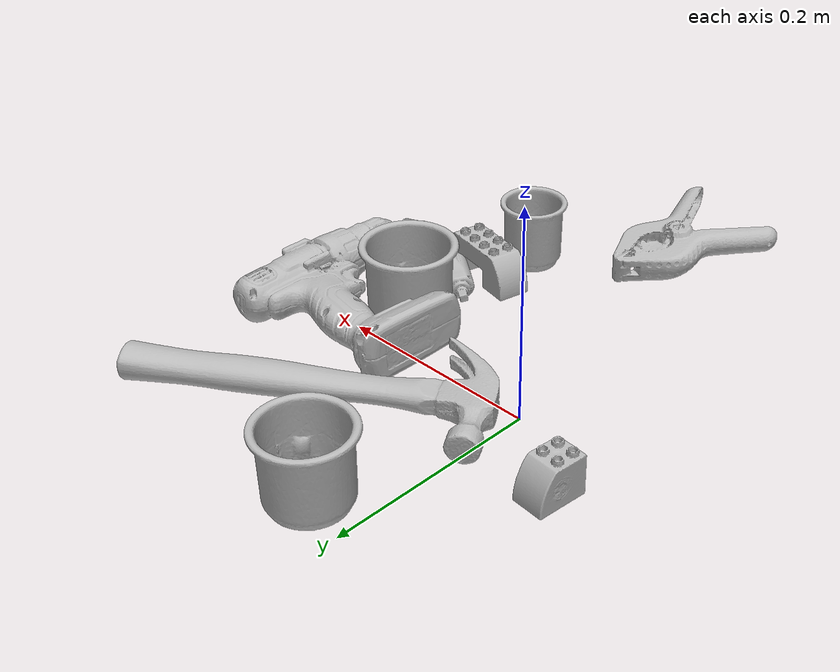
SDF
<sdf version="1.4">
  <world name="default">
    <light name="light1" type="point">
      <pose>0 0 1 0 0 0</pose>
      <diffuse>3 3 3 1</diffuse>
      <specular>3 3 3 1</specular>
    </light>
    <light name="light2" type="point">
      <pose>0 0.5 2 0 0 0</pose>
      <diffuse>1 1 1 1</diffuse>
      <specular>1 1 1 1</specular>
    </light>
    <light name="light3" type="point">
      <pose>0 0.5 2 0 0 0</pose>
      <diffuse>3 3 3 1</diffuse>
      <specular>3 3 3 1</specular>
    </light>
    <scene>
      <ambient>0.7 0.7 0.7</ambient>
    </scene>
    <model name="cup1">
      <link name="link_cup1">
        <collision name="default">
          <geometry>
            <mesh>
              <uri>model://g_cups/collision_meshes/collision.obj</uri>
              <scale>1.0 1.0 1.0</scale>
            </mesh>
          </geometry>
          <surface>
            <friction>
              <ode>
                <mu>0.5</mu>
                <mu2>0.5</mu2>
              </ode>
            </friction>
          <contact>
        <ode>
            <max_vel>0</max_vel>
            <min_depth>0.0001</min_depth>
            <kp>1e8</kp>
        </ode>
    </contact></surface>
        </collision>
        <visual name="default">
          <geometry>
            <mesh>
              <uri>model://g_cups/visual_meshes/visual.dae</uri>
              <scale>1.0 1.0 1.0</scale>
            </mesh>
          </geometry>
        </visual>
        <inertial>
          <mass>0.057625629007816315</mass>
          <pose>-0.0007946282275952399 -4.206500670989044e-05 -0.0021329375449568033 -0.21382697289054745 -0.3141031271963666 0.3112149002706268</pose>
          <inertia>
            <ixx>6.726202e-05</ixx>
            <iyy>6.7033216e-05</iyy>
            <izz>6.967186e-05</izz>
            <ixy>0</ixy>
            <ixz>0</ixz>
            <iyz>0</iyz>
          </inertia>
        </inertial>
      </link>
      <pose>0.04553719237446785 0.18773040175437927 0.037203021347522736 3.2903867061006053e-07 -1.2814108729124838e-06 -1.4627341137565262</pose>
    </model>
    <model name="cup2">
      <link name="link_cup2">
        <collision name="default">
          <geometry>
            <mesh>
              <uri>model://c_cups/collision_meshes/collision.obj</uri>
              <scale>1.0 1.0 1.0</scale>
            </mesh>
          </geometry>
          <surface>
            <friction>
              <ode>
                <mu>0.5</mu>
                <mu2>0.5</mu2>
              </ode>
            </friction>
          <contact>
        <ode>
            <max_vel>0</max_vel>
            <min_depth>0.0001</min_depth>
            <kp>1e8</kp>
        </ode>
    </contact></surface>
        </collision>
        <visual name="default">
          <geometry>
            <mesh>
              <uri>model://c_cups/visual_meshes/visual.dae</uri>
              <scale>1.0 1.0 1.0</scale>
            </mesh>
          </geometry>
        </visual>
        <inertial>
          <mass>0.03477548435330391</mass>
          <pose>0.0007237261161208153 0.0020153902005404234 -0.0012750983005389571 0.30215732346046187 0.013461711857135551 -0.08771879968331305</pose>
          <inertia>
            <ixx>2.5862058e-05</ixx>
            <iyy>2.540504e-05</iyy>
            <izz>2.2871589e-05</izz>
            <ixy>0</ixy>
            <ixz>0</ixz>
            <iyz>0</iyz>
          </inertia>
        </inertial>
      </link>
      <pose>0.16588684916496277 -0.20025169849395752 0.03345915302634239 1.209585328569988e-05 3.632963123512793e-08 -0.9092093833455058</pose>
    </model>
    <model name="cup3">
      <link name="link_cup3">
        <collision name="default">
          <geometry>
            <mesh>
              <uri>model://h_cups/collision_meshes/collision.obj</uri>
              <scale>1.0 1.0 1.0</scale>
            </mesh>
          </geometry>
          <surface>
            <friction>
              <ode>
                <mu>0.5</mu>
                <mu2>0.5</mu2>
              </ode>
            </friction>
          <contact>
        <ode>
            <max_vel>0</max_vel>
            <min_depth>0.0001</min_depth>
            <kp>1e8</kp>
        </ode>
    </contact></surface>
        </collision>
        <visual name="default">
          <geometry>
            <mesh>
              <uri>model://h_cups/visual_meshes/visual.dae</uri>
              <scale>1.0 1.0 1.0</scale>
            </mesh>
          </geometry>
        </visual>
        <inertial>
          <mass>0.050017159432172775</mass>
          <pose>-2.702731035242323e-05 0.0002301866770721972 -0.0018405388109385967 -0.024362003715272553 0.06545245272055236 0.12885201823743497</pose>
          <inertia>
            <ixx>6.459484e-05</ixx>
            <iyy>6.382401e-05</iyy>
            <izz>6.774227e-05</izz>
            <ixy>0</ixy>
            <ixz>0</ixz>
            <iyz>0</iyz>
          </inertia>
        </inertial>
      </link>
      <pose>0.18294471502304077 -0.0492764487862587 0.03775802254676819 1.6020858074246e-05 1.2357171278881859e-05 2.6512245834927963</pose>
    </model>
    <model name="toy1">
      <link name="link_toy1">
        <collision name="default">
          <geometry>
            <mesh>
              <uri>model://e_lego_duplo/collision_meshes/collision.obj</uri>
              <scale>1.0 1.0 1.0</scale>
            </mesh>
          </geometry>
          <surface>
            <friction>
              <ode>
                <mu>0.5</mu>
                <mu2>0.5</mu2>
              </ode>
            </friction>
          <contact>
        <ode>
            <max_vel>0</max_vel>
            <min_depth>0.0001</min_depth>
            <kp>1e8</kp>
        </ode>
    </contact></surface>
        </collision>
        <visual name="default">
          <geometry>
            <mesh>
              <uri>model://e_lego_duplo/visual_meshes/visual.dae</uri>
              <scale>1.0 1.0 1.0</scale>
            </mesh>
          </geometry>
        </visual>
        <inertial>
          <mass>0.09100330621004105</mass>
          <pose>0.0003256048948969692 0.00023485418932978064 0.0019521461799740791 -0.02256778535698338 -6.825395529084007e-05 -0.0076251622764869605</pose>
          <inertia>
            <ixx>1.897719e-05</ixx>
            <iyy>7.788726e-05</iyy>
            <izz>7.584653e-05</izz>
            <ixy>0</ixy>
            <ixz>0</ixz>
            <iyz>0</iyz>
          </inertia>
        </inertial>
      </link>
      <pose>0.1787663847208023 -0.1470487117767334 0.02180900052189827 4.924168481458069e-07 8.686288309304252e-08 2.937383184367436</pose>
    </model>
    <model name="toy2">
      <link name="link_toy2">
        <collision name="default">
          <geometry>
            <mesh>
              <uri>model://b_toy_airplane/collision_meshes/collision.obj</uri>
              <scale>0.5 0.5 0.5</scale>
            </mesh>
          </geometry>
          <surface>
            <friction>
              <ode>
                <mu>0.5</mu>
                <mu2>0.5</mu2>
              </ode>
            </friction>
          <contact>
        <ode>
            <max_vel>0</max_vel>
            <min_depth>0.0001</min_depth>
            <kp>1e8</kp>
        </ode>
    </contact></surface>
        </collision>
        <visual name="default">
          <geometry>
            <mesh>
              <uri>model://b_toy_airplane/visual_meshes/visual.dae</uri>
              <scale>0.5 0.5 0.5</scale>
            </mesh>
          </geometry>
        </visual>
        <inertial>
          <mass>0.06363805383443832</mass>
          <pose>0.002540681976824999 0.0020077931694686413 0.004771532956510782 -0.0400181041712346 -0.04022185546555606 -0.5601502891427816</pose>
          <inertia>
            <ixx>2.9536302e-05</ixx>
            <iyy>1.1805946e-05</iyy>
            <izz>3.6746103e-05</izz>
            <ixy>0</ixy>
            <ixz>0</ixz>
            <iyz>0</iyz>
          </inertia>
        </inertial>
      </link>
      <pose>0.19624729454517365 -0.10427713394165039 0.008441598154604435 0.17780851770808817 0.04585671925418052 2.5164307978064</pose>
    </model>
    <model name="toy3">
      <link name="link_toy3">
        <collision name="default">
          <geometry>
            <mesh>
              <uri>model://d_lego_duplo/collision_meshes/collision.obj</uri>
              <scale>1.0 1.0 1.0</scale>
            </mesh>
          </geometry>
          <surface>
            <friction>
              <ode>
                <mu>0.5</mu>
                <mu2>0.5</mu2>
              </ode>
            </friction>
          <contact>
        <ode>
            <max_vel>0</max_vel>
            <min_depth>0.0001</min_depth>
            <kp>1e8</kp>
        </ode>
    </contact></surface>
        </collision>
        <visual name="default">
          <geometry>
            <mesh>
              <uri>model://d_lego_duplo/visual_meshes/visual.dae</uri>
              <scale>1.0 1.0 1.0</scale>
            </mesh>
          </geometry>
        </visual>
        <inertial>
          <mass>0.05334000289440155</mass>
          <pose>0.002830563811585307 0.0001636617089388892 0.0008589810458943248 0.0801090676593232 -0.3835525121717052 0.0010296416750687279</pose>
          <inertia>
            <ixx>1.0325837e-05</ixx>
            <iyy>1.4655165e-05</iyy>
            <izz>1.4132847e-05</izz>
            <ixy>0</ixy>
            <ixz>0</ixz>
            <iyz>0</iyz>
          </inertia>
        </inertial>
      </link>
      <pose>-0.08185816556215286 0.05617036670446396 0.021740000694990158 5.771905701027477e-07 7.244584828122781e-07 -1.6519620699436468</pose>
    </model>
    <model name="toy4">
      <link name="link_toy4">
        <collision name="default">
          <geometry>
            <mesh>
              <uri>model://a_lego_duplo/collision_meshes/collision.obj</uri>
              <scale>1.0 1.0 1.0</scale>
            </mesh>
          </geometry>
          <surface>
            <friction>
              <ode>
                <mu>0.5</mu>
                <mu2>0.5</mu2>
              </ode>
            </friction>
          <contact>
        <ode>
            <max_vel>0</max_vel>
            <min_depth>0.0001</min_depth>
            <kp>1e8</kp>
        </ode>
    </contact></surface>
        </collision>
        <visual name="default">
          <geometry>
            <mesh>
              <uri>model://a_lego_duplo/visual_meshes/visual.dae</uri>
              <scale>1.0 1.0 1.0</scale>
            </mesh>
          </geometry>
        </visual>
        <inertial>
          <mass>0.02371947281062603</mass>
          <pose>-0.00011337659088894725 0.00018517536227591336 0.00036926098982803524 -0.014117032318495473 -0.00012566219654468525 6.139472672246545e-05</pose>
          <inertia>
            <ixx>3.0410272e-06</ixx>
            <iyy>6.8125664e-06</iyy>
            <izz>8.438875e-06</izz>
            <ixy>0</ixy>
            <ixz>0</ixz>
            <iyz>0</iyz>
          </inertia>
        </inertial>
      </link>
      <pose>0.2728247046470642 -0.13716770708560944 0.012112220749258995 5.677564936456996e-05 3.721962304333907e-05 2.017488072972341</pose>
    </model>
    <model name="hardware1">
      <link name="link_hardware1">
        <collision name="default">
          <geometry>
            <mesh>
              <uri>model://hammer/collision_meshes/collision.obj</uri>
              <scale>1.0 1.0 1.0</scale>
            </mesh>
          </geometry>
          <surface>
            <friction>
              <ode>
                <mu>0.5</mu>
                <mu2>0.5</mu2>
              </ode>
            </friction>
          <contact>
        <ode>
            <max_vel>0</max_vel>
            <min_depth>0.0001</min_depth>
            <kp>1e8</kp>
        </ode>
    </contact></surface>
        </collision>
        <visual name="default">
          <geometry>
            <mesh>
              <uri>model://hammer/visual_meshes/visual.dae</uri>
              <scale>1.0 1.0 1.0</scale>
            </mesh>
          </geometry>
        </visual>
        <inertial>
          <mass>0.21542595326900482</mass>
          <pose>0.009415775537490845 -0.011892358772456646 -0.00012350629549473524 0.02315578421630864 -0.004792165572519315 -0.012760317567756519</pose>
          <inertia>
            <ixx>9.2278024e-05</ixx>
            <iyy>0.0025004656</iyy>
            <izz>0.002572105</izz>
            <ixy>0</ixy>
            <ixz>0</ixz>
            <iyz>0</iyz>
          </inertia>
        </inertial>
      </link>
      <pose>0.1462041139602661 0.08669580519199371 0.016267377883195877 -0.005199057418818429 -0.0013802403124864584 -2.5876347552560057</pose>
    </model>
    <model name="hardware2">
      <link name="link_hardware2">
        <collision name="default">
          <geometry>
            <mesh>
              <uri>model://large_clamp/collision_meshes/collision.obj</uri>
              <scale>1.0 1.0 1.0</scale>
            </mesh>
          </geometry>
          <surface>
            <friction>
              <ode>
                <mu>0.5</mu>
                <mu2>0.5</mu2>
              </ode>
            </friction>
          <contact>
        <ode>
            <max_vel>0</max_vel>
            <min_depth>0.0001</min_depth>
            <kp>1e8</kp>
        </ode>
    </contact></surface>
        </collision>
        <visual name="default">
          <geometry>
            <mesh>
              <uri>model://large_clamp/visual_meshes/visual.dae</uri>
              <scale>1.0 1.0 1.0</scale>
            </mesh>
          </geometry>
        </visual>
        <inertial>
          <mass>0.16898278892040253</mass>
          <pose>0.006369357462972403 0.00035856629256159067 -0.00018398034444544464 -0.002133075920149734 0.009671594117503977 0.026633212091596442</pose>
          <inertia>
            <ixx>0.00014908903</ixx>
            <iyy>0.00028312797</iyy>
            <izz>0.00040958088</izz>
            <ixy>0</ixy>
            <ixz>0</ixz>
            <iyz>0</iyz>
          </inertia>
        </inertial>
      </link>
      <pose>0.06672666221857071 -0.3055121600627899 0.018503746017813683 -0.011886372750719071 0.04691786228904092 1.3601147064841106</pose>
    </model>
    <model name="hardware3">
      <link name="link_hardware3">
        <collision name="default">
          <geometry>
            <mesh>
              <uri>model://power_drill/collision_meshes/collision.obj</uri>
              <scale>1.0 1.0 1.0</scale>
            </mesh>
          </geometry>
          <surface>
            <friction>
              <ode>
                <mu>0.5</mu>
                <mu2>0.5</mu2>
              </ode>
            </friction>
          <contact>
        <ode>
            <max_vel>0</max_vel>
            <min_depth>0.0001</min_depth>
            <kp>1e8</kp>
        </ode>
    </contact></surface>
        </collision>
        <visual name="default">
          <geometry>
            <mesh>
              <uri>model://power_drill/visual_meshes/visual.dae</uri>
              <scale>1.0 1.0 1.0</scale>
            </mesh>
          </geometry>
        </visual>
        <inertial>
          <mass>0.7224003672599792</mass>
          <pose>-0.014780545607209206 0.014369428157806396 0.0012414171360433102 0.0046091635101465946 0.00407302394444766 -0.18362692290061644</pose>
          <inertia>
            <ixx>0.002943816</ixx>
            <iyy>0.0011582379</iyy>
            <izz>0.0038878287</izz>
            <ixy>0</ixy>
            <ixz>0</ixz>
            <iyz>0</iyz>
          </inertia>
        </inertial>
      </link>
      <pose>0.2067790925502777 -0.014916369691491127 0.027312448248267174 -0.030306023956534565 -0.04725278511292697 -1.6262308018553753</pose>
    </model>
  <physics type="ode">
      <max_contacts>50</max_contacts>
      <ode>
        <solver>
          <type>quick</type>
          <iters>75</iters>
        </solver>
        <constraints>
          <contact_max_correcting_vel>0</contact_max_correcting_vel>
          <contact_surface_layer>0</contact_surface_layer>
        </constraints>
      </ode>
    </physics></world>
</sdf>
